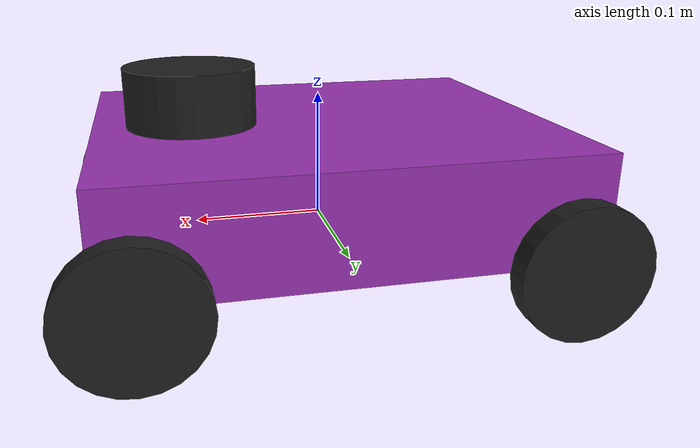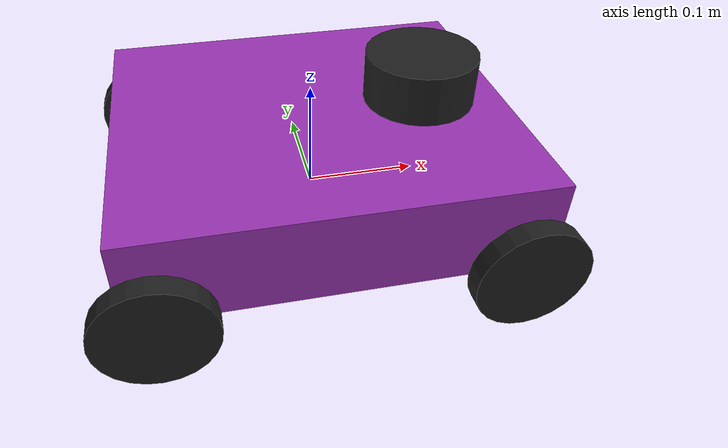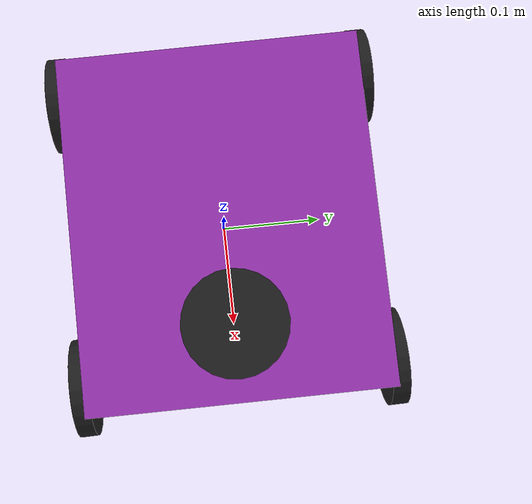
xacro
<?xml version="1.0"?>
<robot xmlns:xacro="http://www.ros.org/wiki/xacro" name="robot">
    <!-- Main URDF file for Ackermann Drive Robot -->

    <!-- Include general xacro files -->
    <xacro:include filename="common.xacro"/>

    <!-- Include sensors -->
    <xacro:include filename="lidar.xacro"/>

    <!-- Robot Variables -->
    <xacro:property name="body_mass" value="20.0" />
    <xacro:property name="wheel_mass" value="3.0" />
    <xacro:property name="steering_mass" value="0.01" />

    <xacro:property name="body_length" value="0.35" />
    <xacro:property name="body_width" value="0.3" />
    <xacro:property name="body_heigth" value="0.08" />

    <xacro:property name="front_wheel_offset_x" value="0.15" />
    <xacro:property name="rear_wheel_offset_x" value="-0.15" />

    <xacro:property name="wheel_offset_y" value="${body_width/2 + wheel_thickness/2}" />
    <xacro:property name="wheel_offset_z" value="0.0" />

    <xacro:property name="wheel_radius" value="0.05" />
    <xacro:property name="wheel_thickness" value="0.018" />

    <!-- Base Link -->
    <link name="base_link"></link>

    <!-- Base Footprint -->
    <joint name="base_footprint_joint" type="fixed">
        <parent link="base_link"/>
        <child link="base_footprint"/>
        <origin xyz="0 0 0" rpy="0 0 0"/>
    </joint>
    <link name="base_footprint"></link>

    <!-- Chassis -->
    <joint name="chassis_joint" type="fixed">
        <parent link="base_link" />
        <child link="chassis" />
        <origin xyz="0 0 0" rpy="0 0 0" />
    </joint>
    <link name="chassis">
        <visual>
            <origin xyz="0 0 ${body_heigth/2}"/>
            <geometry>
                <box size="${body_length} ${body_width} ${body_heigth}"/>
            </geometry>
            <material name="purple"/>
        </visual>
        <collision>
            <origin xyz="0 0 ${body_heigth/2}"/>
            <geometry>
                <box size="${body_length} ${body_width} ${body_heigth}"/>
            </geometry>
        </collision>
        <xacro:inertial_box mass="${body_mass}" x="${body_length}" y="${body_width}" z="${body_heigth}">
            <origin xyz="0 0 0" rpy="0 0 0"/>
        </xacro:inertial_box>
    </link>

    <!-- Left Wheel Steer -->
    <joint name="left_steer_joint" type="revolute">
        <parent link="chassis" />
        <child link="front_left_steer" />
        <origin xyz="${front_wheel_offset_x} ${wheel_offset_y} ${wheel_offset_z}" rpy="0 0 0" />
        <axis xyz="0 0 1" />
        <limit upper="0.8" lower="-0.8" effort="-1.0" velocity="-1.0" />
    </joint>
    <link name="front_left_steer">
        <inertial>
            <origin xyz="0 0 0" rpy="0 0 0" />
            <mass value="${steering_mass}" />
            <inertia
                ixx="${steering_mass/12*(3*wheel_radius*wheel_radius + wheel_thickness*wheel_thickness)}"
                ixy="0" ixz="0"
                iyy="${steering_mass/12*(3*wheel_radius*wheel_radius + wheel_thickness*wheel_thickness)}"
                iyz="0" izz="${steering_mass/2 * wheel_radius*wheel_radius}" />
        </inertial>
    </link>

    <!-- Right Wheel Steer -->
    <joint name="right_steer_joint" type="revolute">
        <parent link="chassis" />
        <child link="front_right_steer" />
        <origin xyz="${front_wheel_offset_x} ${-wheel_offset_y} ${wheel_offset_z}" rpy="0 0 0" />
        <axis xyz="0 0 1" />
        <limit upper="0.8" lower="-0.8" effort="-1.0" velocity="-1.0" />
    </joint>
    <link name="front_right_steer">
        <inertial>
            <origin xyz="0 0 0" rpy="0 0 0" />
            <mass value="${steering_mass}" />
            <inertia
                ixx="${steering_mass/12*(3*wheel_radius*wheel_radius + wheel_thickness*wheel_thickness)}"
                ixy="0" ixz="0"
                iyy="${steering_mass/12*(3*wheel_radius*wheel_radius + wheel_thickness*wheel_thickness)}"
                iyz="0" izz="${steering_mass/2 * wheel_radius*wheel_radius}" />
        </inertial>
    </link>

    <!-- Front Left Wheel -->
    <joint name="front_left_wheel_joint" type="continuous">
        <parent link="front_left_steer" />
        <child link="front_left_wheel" />
        <origin xyz="0 0 0" rpy="1.5708 0 0.016976" />
        <axis xyz="0 0 -1" />
        <dynamics friction="0.8" damping="0.5" />
        <limit lower="-3.14159" upper="3.14159" effort="200" velocity="20" />
    </joint>
    <link name="front_left_wheel">
        <inertial>
            <origin xyz="0 0 0" rpy="0 0 0" />
            <mass value="${wheel_mass}" />
            <inertia
                ixx="${wheel_mass/12*(3*wheel_radius*wheel_radius + wheel_thickness*wheel_thickness)}"
                ixy="0" ixz="0"
                iyy="${wheel_mass/12*(3*wheel_radius*wheel_radius + wheel_thickness*wheel_thickness)}"
                iyz="0" izz="${wheel_mass/2 * wheel_radius*wheel_radius}" />
        </inertial>
        <visual>
            <origin xyz="0 0 0" rpy="0 0 0" />
            <geometry>
                <cylinder radius="${wheel_radius}" length="${wheel_thickness}" />
            </geometry>
            <material name="black"/>
        </visual>
        <collision>
            <origin xyz="0 0 0" rpy="0 0 0" />
            <geometry>
                <cylinder radius="${wheel_radius}" length="${wheel_thickness}" />
            </geometry>
        </collision>
    </link>

    <!-- Front Rigth Wheel -->
    <joint name="front_right_wheel_joint" type="continuous">
        <origin xyz="0 0 0" rpy="-1.5708 0 0.016976" />
        <parent link="front_right_steer" />
        <child link="front_right_wheel" />
        <axis xyz="0 0 1" />
        <dynamics friction="0.8" damping="0.5" />
        <limit lower="-3.14159" upper="3.14159" effort="200" velocity="20" />
    </joint>
    <link name="front_right_wheel">
        <inertial>
            <origin xyz="0 0 0" rpy="0 0 0" />
            <mass value="${wheel_mass}" />
            <inertia
                ixx="${wheel_mass/12*(3*wheel_radius*wheel_radius + wheel_thickness*wheel_thickness)}"
                ixy="0" ixz="0"
                iyy="${wheel_mass/12*(3*wheel_radius*wheel_radius + wheel_thickness*wheel_thickness)}"
                iyz="0" izz="${wheel_mass/2 * wheel_radius*wheel_radius}" />
        </inertial>
        <visual>
            <origin xyz="0 0 0" rpy="0 0 0" />
            <geometry>
                <cylinder radius="${wheel_radius}" length="${wheel_thickness}" />
            </geometry>
            <material name="black"/>
        </visual>
        <collision>
            <origin xyz="0 0 0" rpy="0 0 0" />
            <geometry>
                <cylinder radius="${wheel_radius}" length="${wheel_thickness}" />
            </geometry>
        </collision>
    </link>

    <!-- Rear Left Wheel -->
    <joint name="rear_left_wheel_joint" type="continuous">
        <origin xyz="${rear_wheel_offset_x} ${wheel_offset_y} ${wheel_offset_z}" rpy="1.5708 0 0" />
        <parent link="chassis" />
        <child link="rear_left_wheel" />
        <axis xyz="0 0 -1" />
        <dynamics friction="0.8" damping="0.5" />
        <limit lower="-3.14159" upper="3.14159" effort="70" velocity="20" />
    </joint>
    <link name="rear_left_wheel">
        <inertial>
            <origin xyz="0 0 0" rpy="0 0 0" />
            <mass value="${wheel_mass}" />
            <inertia
                ixx="${wheel_mass/12*(3*wheel_radius*wheel_radius + wheel_thickness*wheel_thickness)}"
                ixy="0" ixz="0"
                iyy="${wheel_mass/12*(3*wheel_radius*wheel_radius + wheel_thickness*wheel_thickness)}"
                iyz="0" izz="${wheel_mass/2 * wheel_radius*wheel_radius}" />
        </inertial>
        <visual>
            <origin xyz="0 0 0" rpy="0 0 0" />
            <geometry>
                <cylinder radius="${wheel_radius}" length="${wheel_thickness}" />
            </geometry>
            <material name="black"/>
        </visual>
        <collision>
            <origin xyz="0 0 0" rpy="0 0 0" />
            <geometry>
                <cylinder radius="${wheel_radius}" length="${wheel_thickness}" />
            </geometry>
        </collision>
    </link>

    <!-- Rear Right Wheel -->
    <joint name="rear_right_wheel_joint" type="continuous">
        <origin xyz="${rear_wheel_offset_x} ${-wheel_offset_y} ${wheel_offset_z}" rpy="-1.5708 0 0" />
        <parent link="chassis" />
        <child link="rear_right_wheel" />
        <axis xyz="0 0 1" />
        <dynamics friction="0.8" damping="0.5" />
        <limit lower="-3.14159" upper="3.14159" effort="70" velocity="20" />
    </joint>
    <link name="rear_right_wheel">
        <inertial>
            <origin xyz="0 0 0" rpy="0 0 0" />
            <mass value="${wheel_mass}" />
            <inertia
                ixx="${wheel_mass/12*(3*wheel_radius*wheel_radius + wheel_thickness*wheel_thickness)}"
                ixy="0" ixz="0"
                iyy="${wheel_mass/12*(3*wheel_radius*wheel_radius + wheel_thickness*wheel_thickness)}"
                iyz="0" izz="${wheel_mass/2 * wheel_radius*wheel_radius}" />
        </inertial>
        <visual>
            <origin xyz="0 0 0" rpy="0 0 0" />
            <geometry>
                <cylinder radius="${wheel_radius}" length="${wheel_thickness}" />
            </geometry>
            <material name="black"/>
        </visual>
        <collision>
            <origin xyz="0 0 0" rpy="0 0 0" />
            <geometry>
                <cylinder radius="${wheel_radius}" length="${wheel_thickness}" />
            </geometry>
        </collision>
    </link>

    <!-- Virtual Steering wheel -->
    <joint name="virtual_steering_wheel_joint" type="revolute">
        <origin xyz="${rear_wheel_offset_x} 0 0" rpy="0 0 0" />
        <parent link="chassis" />
        <child link="virtual_steer" />
        <axis xyz="-1 0 0" />
        <limit lower="-3" upper="3" effort="200" velocity="20" />
    </joint>
    <link name="virtual_steer">
        <visual>
            <origin xyz="0 0 0" rpy="0 0 0" />
            <geometry>
                <box size="0.01 0.15 0.075" />
            </geometry>
            <material name="red"/>
        </visual>
        <inertial>
            <origin xyz="0 0 0" rpy="0 0 0" />
            <mass value="0.001" />
            <inertia ixx="0.0" ixy="0.0" ixz="0.0" iyy="0.0" iyz="0.0" izz="0.0" />
        </inertial>
    </link>

    <!-- Gazebo -->
    <gazebo reference="chassis">
        <material>Gazebo/Blue</material>
    </gazebo>

    <gazebo reference="front_left_wheel">
        <material>Gazebo/Black</material>
    </gazebo>

    <gazebo reference="front_right_wheel">
        <material>Gazebo/Black</material>
    </gazebo>

    <gazebo reference="rear_left_wheel">
        <material>Gazebo/Black</material>
    </gazebo>

    <gazebo reference="rear_right_wheel">
        <material>Gazebo/Black</material>
    </gazebo>

    <gazebo reference="virtual_steer">
        <material>Gazebo/Red</material>
    </gazebo>

    <!-- Gazebo plugin for Ackermann Robot -->
    <gazebo>
        <plugin name='gazebo_ackermann_drive' filename='libgazebo_ros_ackermann_drive.so'>
            <update_rate>100.0</update_rate>
            <!-- Wheels -->
            <front_left_joint>front_left_wheel_joint</front_left_joint>
            <front_right_joint>front_right_wheel_joint</front_right_joint>
            <rear_left_joint>rear_left_wheel_joint</rear_left_joint>
            <rear_right_joint>rear_right_wheel_joint</rear_right_joint>
            <left_steering_joint>left_steer_joint</left_steering_joint>
            <right_steering_joint>right_steer_joint</right_steering_joint>
            <steering_wheel_joint>virtual_steering_wheel_joint</steering_wheel_joint>
            <!-- Limits -->
            <max_speed>20</max_speed>
            <max_steer>1.57</max_steer>
            <max_steering_angle>15.0</max_steering_angle>
            <!-- PID tuning -->
            <left_steering_pid_gain>200 0 1</left_steering_pid_gain>
            <left_steering_i_range>0 0</left_steering_i_range>
            <right_steering_pid_gain>200 0 1</right_steering_pid_gain>
            <right_steering_i_range>0 0</right_steering_i_range>
            <linear_velocity_pid_gain>200 0 1</linear_velocity_pid_gain>
            <linear_velocity_i_range>0 0</linear_velocity_i_range>
            <!-- Output -->
            <publish_odom>true</publish_odom>
            <publish_odom_tf>true</publish_odom_tf>
            <publish_wheel_tf>true</publish_wheel_tf>
            <publish_distance>true</publish_distance>
            <!-- Frames -->
            <odometry_frame>odom</odometry_frame>
            <robot_base_frame>base_link</robot_base_frame>
        </plugin>
    </gazebo>
</robot>

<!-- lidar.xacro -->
<robot xmlns:xacro="http://www.ros.org/wiki/xacro" >
    <!-- Lidar's urdf-->
    <joint name="laser_joint" type="fixed">
        <parent link="chassis"/>
        <child link="laser_frame"/>
        <origin xyz="0.1 0 0.1" rpy="0 0 0"/>
    </joint>
    <link name="laser_frame">
        <visual>
            <geometry>
                <cylinder radius="0.05" length="0.05"/>
            </geometry>
            <material name="black"/>
        </visual>
        <collision>
            <geometry>
                <cylinder radius="0.05" length="0.05"/>
            </geometry>
        </collision>
        <xacro:inertial_cylinder mass="0.1" length="0.05" radius="0.05">
            <origin xyz="0 0 0" rpy="0 0 0"/>
        </xacro:inertial_cylinder>
    </link>

    <!-- 2D Lidar Gazebo Sensor Plugin  -->
    <gazebo reference="laser_frame">
        <material>Gazebo/Black</material>

        <sensor name="laser" type="ray">
            <pose> 0 0 0 0 0 0 </pose>
            <visualize>true</visualize>
            <update_rate>10</update_rate>
            <ray>
                <scan>
                    <horizontal>
                        <samples>360</samples>
                        <min_angle>-3.14</min_angle>
                        <max_angle>3.14</max_angle>
                    </horizontal>
                </scan>
                <range>
                    <min>0.3</min>
                    <max>12</max>
                </range>
            </ray>

            <plugin name="laser_controller" filename="libgazebo_ros_ray_sensor.so">
                <ros>
                    <argument>~/out:=scan</argument>
                </ros>
                <output_type>sensor_msgs/LaserScan</output_type>
                <frame_name>laser_frame</frame_name>
            </plugin>
        </sensor>
    </gazebo>

</robot>
